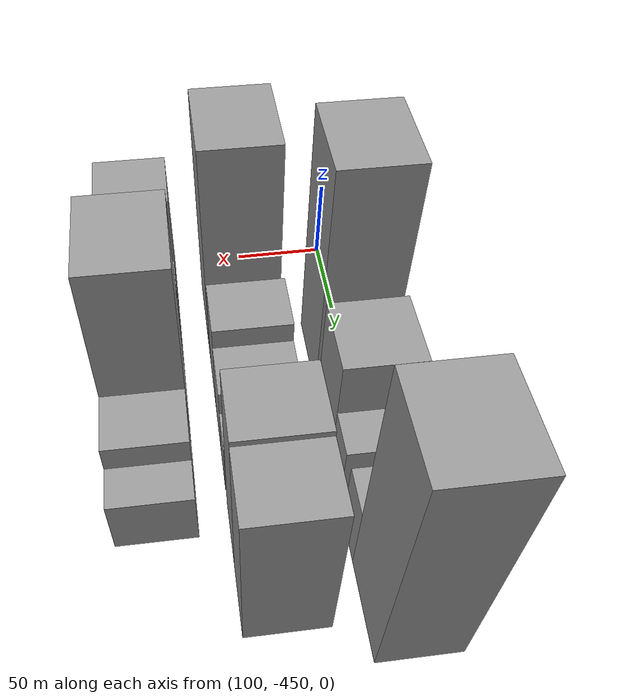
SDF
<sdf version="1.6">
 <world name="default">
  <model name="building_12">
   <static>1</static>
   <pose>100.0000 -365.3089 0 0.000000 0.000000 0.000000</pose>
   <link name="link">
    <pose>0 0 73.50 0 0 0</pose>
    <collision name="collision"><geometry><box><size>40.0000 48.5518 147.0000</size></box></geometry></collision>
    <visual name="visual">
     <cast_shadows>0</cast_shadows>
     <geometry><box><size>40.0000 48.5518 147.0000</size></box></geometry>
     <material>
      <script>
       <uri>model://grey_wall/materials/scripts</uri>
       <uri>model://grey_wall/materials/textures</uri>
       <name>vrc/grey_wall</name>
      </script>
     </material>
    </visual>
   </link>
  </model>
  <model name="building_13">
   <static>1</static>
   <pose>100.0000 -314.8790 0 0.000000 0.000000 0.000000</pose>
   <link name="link">
    <pose>0 0 37.50 0 0 0</pose>
    <collision name="collision"><geometry><box><size>40.0000 40.3081 75.0000</size></box></geometry></collision>
    <visual name="visual">
     <cast_shadows>0</cast_shadows>
     <geometry><box><size>40.0000 40.3081 75.0000</size></box></geometry>
     <material>
      <script>
       <uri>model://grey_wall/materials/scripts</uri>
       <uri>model://grey_wall/materials/textures</uri>
       <name>vrc/grey_wall</name>
      </script>
     </material>
    </visual>
   </link>
  </model>
  <model name="building_14">
   <static>1</static>
   <pose>100.0000 -283.0993 0 0.000000 0.000000 0.000000</pose>
   <link name="link">
    <pose>0 0 21.00 0 0 0</pose>
    <collision name="collision"><geometry><box><size>40.0000 23.2512 42.0000</size></box></geometry></collision>
    <visual name="visual">
     <cast_shadows>0</cast_shadows>
     <geometry><box><size>40.0000 23.2512 42.0000</size></box></geometry>
     <material>
      <script>
       <uri>model://grey_wall/materials/scripts</uri>
       <uri>model://grey_wall/materials/textures</uri>
       <name>vrc/grey_wall</name>
      </script>
     </material>
    </visual>
   </link>
  </model>
  <model name="building_15">
   <static>1</static>
   <pose>100.0000 -250.8679 0 0.000000 0.000000 0.000000</pose>
   <link name="link">
    <pose>0 0 22.50 0 0 0</pose>
    <collision name="collision"><geometry><box><size>40.0000 23.2116 45.0000</size></box></geometry></collision>
    <visual name="visual">
     <cast_shadows>0</cast_shadows>
     <geometry><box><size>40.0000 23.2116 45.0000</size></box></geometry>
     <material>
      <script>
       <uri>model://grey_wall/materials/scripts</uri>
       <uri>model://grey_wall/materials/textures</uri>
       <name>vrc/grey_wall</name>
      </script>
     </material>
    </visual>
   </link>
  </model>
  <model name="building_16">
   <static>1</static>
   <pose>100.0000 -215.7812 0 0.000000 0.000000 0.000000</pose>
   <link name="link">
    <pose>0 0 73.50 0 0 0</pose>
    <collision name="collision"><geometry><box><size>40.0000 46.9617 147.0000</size></box></geometry></collision>
    <visual name="visual">
     <cast_shadows>0</cast_shadows>
     <geometry><box><size>40.0000 46.9617 147.0000</size></box></geometry>
     <material>
      <script>
       <uri>model://grey_wall/materials/scripts</uri>
       <uri>model://grey_wall/materials/textures</uri>
       <name>vrc/grey_wall</name>
      </script>
     </material>
    </visual>
   </link>
  </model>
  <model name="building_68">
   <static>1</static>
   <pose>155.0000 -402.1438 0 0.000000 0.000000 0.000000</pose>
   <link name="link">
    <pose>0 0 67.50 0 0 0</pose>
    <collision name="collision"><geometry><box><size>40.0000 49.4666 135.0000</size></box></geometry></collision>
    <visual name="visual">
     <cast_shadows>0</cast_shadows>
     <geometry><box><size>40.0000 49.4666 135.0000</size></box></geometry>
     <material>
      <script>
       <uri>model://grey_wall/materials/scripts</uri>
       <uri>model://grey_wall/materials/textures</uri>
       <name>vrc/grey_wall</name>
      </script>
     </material>
    </visual>
   </link>
  </model>
  <model name="building_69">
   <static>1</static>
   <pose>155.0000 -371.6300 0 0.000000 0.000000 0.000000</pose>
   <link name="link">
    <pose>0 0 12.00 0 0 0</pose>
    <collision name="collision"><geometry><box><size>40.0000 11.5610 24.0000</size></box></geometry></collision>
    <visual name="visual">
     <cast_shadows>0</cast_shadows>
     <geometry><box><size>40.0000 11.5610 24.0000</size></box></geometry>
     <material>
      <script>
       <uri>model://grey_wall/materials/scripts</uri>
       <uri>model://grey_wall/materials/textures</uri>
       <name>vrc/grey_wall</name>
      </script>
     </material>
    </visual>
   </link>
  </model>
  <model name="building_70">
   <static>1</static>
   <pose>155.0000 -350.0865 0 0.000000 0.000000 0.000000</pose>
   <link name="link">
    <pose>0 0 31.50 0 0 0</pose>
    <collision name="collision"><geometry><box><size>40.0000 31.5260 63.0000</size></box></geometry></collision>
    <visual name="visual">
     <cast_shadows>0</cast_shadows>
     <geometry><box><size>40.0000 31.5260 63.0000</size></box></geometry>
     <material>
      <script>
       <uri>model://grey_wall/materials/scripts</uri>
       <uri>model://grey_wall/materials/textures</uri>
       <name>vrc/grey_wall</name>
      </script>
     </material>
    </visual>
   </link>
  </model>
  <model name="building_71">
   <static>1</static>
   <pose>155.0000 -319.9891 0 0.000000 0.000000 0.000000</pose>
   <link name="link">
    <pose>0 0 25.50 0 0 0</pose>
    <collision name="collision"><geometry><box><size>40.0000 28.6688 51.0000</size></box></geometry></collision>
    <visual name="visual">
     <cast_shadows>0</cast_shadows>
     <geometry><box><size>40.0000 28.6688 51.0000</size></box></geometry>
     <material>
      <script>
       <uri>model://grey_wall/materials/scripts</uri>
       <uri>model://grey_wall/materials/textures</uri>
       <name>vrc/grey_wall</name>
      </script>
     </material>
    </visual>
   </link>
  </model>
  <model name="building_72">
   <static>1</static>
   <pose>155.0000 -295.2236 0 0.000000 0.000000 0.000000</pose>
   <link name="link">
    <pose>0 0 18.00 0 0 0</pose>
    <collision name="collision"><geometry><box><size>40.0000 20.8623 36.0000</size></box></geometry></collision>
    <visual name="visual">
     <cast_shadows>0</cast_shadows>
     <geometry><box><size>40.0000 20.8623 36.0000</size></box></geometry>
     <material>
      <script>
       <uri>model://grey_wall/materials/scripts</uri>
       <uri>model://grey_wall/materials/textures</uri>
       <name>vrc/grey_wall</name>
      </script>
     </material>
    </visual>
   </link>
  </model>
  <model name="building_73">
   <static>1</static>
   <pose>155.0000 -260.6465 0 0.000000 0.000000 0.000000</pose>
   <link name="link">
    <pose>0 0 52.50 0 0 0</pose>
    <collision name="collision"><geometry><box><size>40.0000 34.2919 105.0000</size></box></geometry></collision>
    <visual name="visual">
     <cast_shadows>0</cast_shadows>
     <geometry><box><size>40.0000 34.2919 105.0000</size></box></geometry>
     <material>
      <script>
       <uri>model://grey_wall/materials/scripts</uri>
       <uri>model://grey_wall/materials/textures</uri>
       <name>vrc/grey_wall</name>
      </script>
     </material>
    </visual>
   </link>
  </model>
  <model name="building_74">
   <static>1</static>
   <pose>155.0000 -226.7951 0 0.000000 0.000000 0.000000</pose>
   <link name="link">
    <pose>0 0 51.00 0 0 0</pose>
    <collision name="collision"><geometry><box><size>40.0000 33.4109 102.0000</size></box></geometry></collision>
    <visual name="visual">
     <cast_shadows>0</cast_shadows>
     <geometry><box><size>40.0000 33.4109 102.0000</size></box></geometry>
     <material>
      <script>
       <uri>model://grey_wall/materials/scripts</uri>
       <uri>model://grey_wall/materials/textures</uri>
       <name>vrc/grey_wall</name>
      </script>
     </material>
    </visual>
   </link>
  </model>
  <model name="building_117">
   <static>1</static>
   <pose>210.0000 -437.1897 0 0.000000 0.000000 0.000000</pose>
   <link name="link">
    <pose>0 0 37.50 0 0 0</pose>
    <collision name="collision"><geometry><box><size>40.0000 38.4639 75.0000</size></box></geometry></collision>
    <visual name="visual">
     <cast_shadows>0</cast_shadows>
     <geometry><box><size>40.0000 38.4639 75.0000</size></box></geometry>
     <material>
      <script>
       <uri>model://grey_wall/materials/scripts</uri>
       <uri>model://grey_wall/materials/textures</uri>
       <name>vrc/grey_wall</name>
      </script>
     </material>
    </visual>
   </link>
  </model>
  <model name="building_118">
   <static>1</static>
   <pose>210.0000 -413.5424 0 0.000000 0.000000 0.000000</pose>
   <link name="link">
    <pose>0 0 9.00 0 0 0</pose>
    <collision name="collision"><geometry><box><size>40.0000 8.8306 18.0000</size></box></geometry></collision>
    <visual name="visual">
     <cast_shadows>0</cast_shadows>
     <geometry><box><size>40.0000 8.8306 18.0000</size></box></geometry>
     <material>
      <script>
       <uri>model://grey_wall/materials/scripts</uri>
       <uri>model://grey_wall/materials/textures</uri>
       <name>vrc/grey_wall</name>
      </script>
     </material>
    </visual>
   </link>
  </model>
  <model name="building_119">
   <static>1</static>
   <pose>210.0000 -392.7704 0 0.000000 0.000000 0.000000</pose>
   <link name="link">
    <pose>0 0 22.50 0 0 0</pose>
    <collision name="collision"><geometry><box><size>40.0000 22.7132 45.0000</size></box></geometry></collision>
    <visual name="visual">
     <cast_shadows>0</cast_shadows>
     <geometry><box><size>40.0000 22.7132 45.0000</size></box></geometry>
     <material>
      <script>
       <uri>model://grey_wall/materials/scripts</uri>
       <uri>model://grey_wall/materials/textures</uri>
       <name>vrc/grey_wall</name>
      </script>
     </material>
    </visual>
   </link>
  </model>
  <model name="building_120">
   <static>1</static>
   <pose>210.0000 -371.0163 0 0.000000 0.000000 0.000000</pose>
   <link name="link">
    <pose>0 0 19.50 0 0 0</pose>
    <collision name="collision"><geometry><box><size>40.0000 20.7950 39.0000</size></box></geometry></collision>
    <visual name="visual">
     <cast_shadows>0</cast_shadows>
     <geometry><box><size>40.0000 20.7950 39.0000</size></box></geometry>
     <material>
      <script>
       <uri>model://grey_wall/materials/scripts</uri>
       <uri>model://grey_wall/materials/textures</uri>
       <name>vrc/grey_wall</name>
      </script>
     </material>
    </visual>
   </link>
  </model>
  <model name="building_121">
   <static>1</static>
   <pose>210.0000 -335.9780 0 0.000000 0.000000 0.000000</pose>
   <link name="link">
    <pose>0 0 64.50 0 0 0</pose>
    <collision name="collision"><geometry><box><size>40.0000 49.2816 129.0000</size></box></geometry></collision>
    <visual name="visual">
     <cast_shadows>0</cast_shadows>
     <geometry><box><size>40.0000 49.2816 129.0000</size></box></geometry>
     <material>
      <script>
       <uri>model://grey_wall/materials/scripts</uri>
       <uri>model://grey_wall/materials/textures</uri>
       <name>vrc/grey_wall</name>
      </script>
     </material>
    </visual>
   </link>
  </model>
  <model name="building_122">
   <static>1</static>
   <pose>210.0000 -296.3959 0 0.000000 0.000000 0.000000</pose>
   <link name="link">
    <pose>0 0 25.50 0 0 0</pose>
    <collision name="collision"><geometry><box><size>40.0000 29.8825 51.0000</size></box></geometry></collision>
    <visual name="visual">
     <cast_shadows>0</cast_shadows>
     <geometry><box><size>40.0000 29.8825 51.0000</size></box></geometry>
     <material>
      <script>
       <uri>model://grey_wall/materials/scripts</uri>
       <uri>model://grey_wall/materials/textures</uri>
       <name>vrc/grey_wall</name>
      </script>
     </material>
    </visual>
   </link>
  </model>
  <model name="building_123">
   <static>1</static>
   <pose>210.0000 -271.0802 0 0.000000 0.000000 0.000000</pose>
   <link name="link">
    <pose>0 0 18.00 0 0 0</pose>
    <collision name="collision"><geometry><box><size>40.0000 20.7490 36.0000</size></box></geometry></collision>
    <visual name="visual">
     <cast_shadows>0</cast_shadows>
     <geometry><box><size>40.0000 20.7490 36.0000</size></box></geometry>
     <material>
      <script>
       <uri>model://grey_wall/materials/scripts</uri>
       <uri>model://grey_wall/materials/textures</uri>
       <name>vrc/grey_wall</name>
      </script>
     </material>
    </visual>
   </link>
  </model>
 </world>
</sdf>
